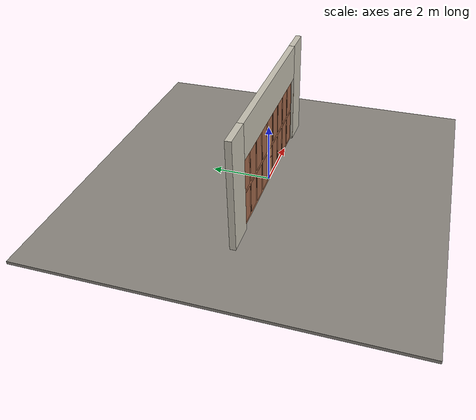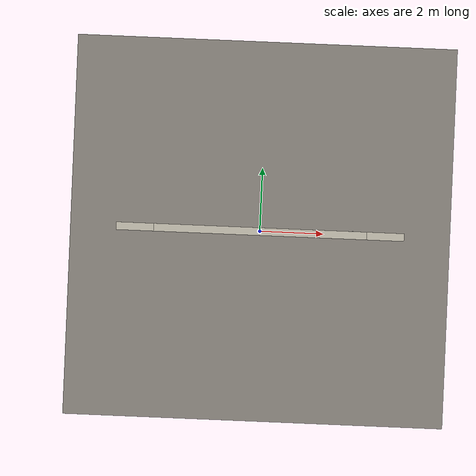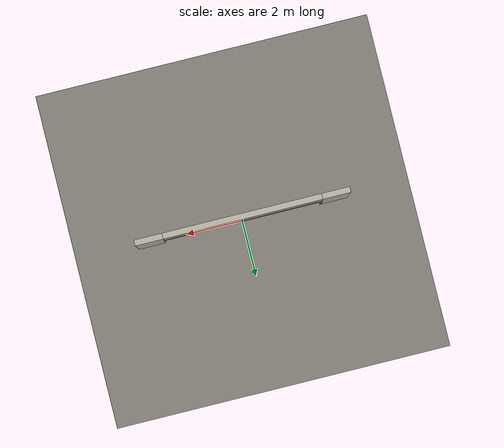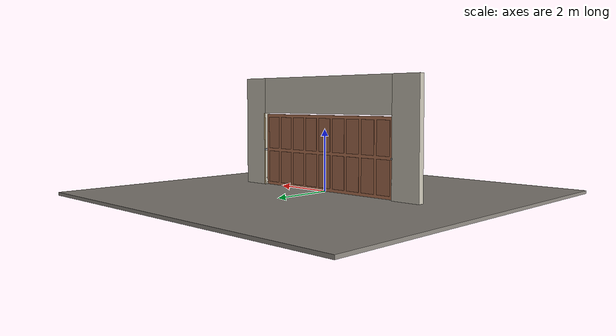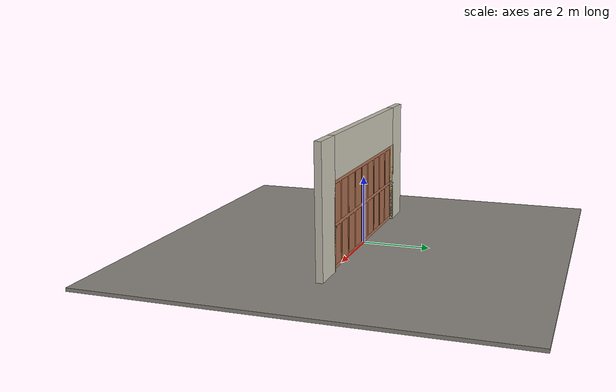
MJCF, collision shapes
<?xml version="1.0" ?>
<mujoco model="db0173_garage_tiltup_full">
  <compiler angle="radian" meshdir="../../hardware" texturedir="../../textures" autolimits="true" inertiafromgeom="false"/>
  <option timestep="0.002" integrator="implicitfast" cone="elliptic" impratio="10" noslip_iterations="3">
    <flag multiccd="enable"/>
  </option>
  <size memory="16M"/>
  <default>
    <geom condim="4" solref="0.005 1" solimp="0.95 0.99 0.001"/>
    <joint solreflimit="0.005 1" solimplimit="0.95 0.99 0.001"/>
    <tendon solreflimit="0.005 1"/>
    <equality solref="0.002 1"/>
  </default>
  <visual>
    <headlight ambient="0.4 0.4 0.4" diffuse="0.7 0.7 0.7" specular="0.2 0.2 0.2"/>
    <quality shadowsize="4096"/>
    <map znear="0.01" zfar="60"/>
  </visual>
  <asset>
    <mesh name="lever_01c630149d" file="lever_01c630149d.obj"/>
    <material name="mat_floor" rgba="0.55 0.53 0.5 1" specular="0.2" shininess="0.15" reflectance="0"/>
    <material name="mat_wall" rgba="0.78 0.76 0.7 1" specular="0.2" shininess="0.1" reflectance="0"/>
    <material name="mat_frame" rgba="0.82 0.7 0.5 1" specular="0.2" shininess="0.45" reflectance="0"/>
    <material name="mat_door" rgba="0.7 0.45 0.32 1" specular="0.2" shininess="0.4" reflectance="0"/>
    <material name="mat_door_panel" rgba="0.644 0.414 0.294 1" specular="0.2" shininess="0.4" reflectance="0"/>
    <material name="mat_track" rgba="0.65 0.66 0.68 1" specular="0.74" shininess="0.5" reflectance="0.36"/>
    <material name="mat_op_black_matte_metal" rgba="0.05 0.05 0.05 1" specular="0.38" shininess="0.3" reflectance="0.12"/>
    <material name="mat_trim" rgba="0.85 0.66 0.3 1" specular="0.8" shininess="0.75" reflectance="0.4"/>
    <texture name="skybox" type="skybox" builtin="gradient" rgb1="0.6 0.7 0.85" rgb2="0.9 0.92 0.95" width="256" height="256"/>
  </asset>
  <worldbody>
    <light name="sun" pos="1.5 -2.5 4" dir="-0.3 0.5 -0.8" directional="true" diffuse="0.8 0.8 0.8" specular="0.3 0.3 0.3" castshadow="true"/>
    <light name="fill" pos="-1.5 2.5 3" dir="0.3 -0.5 -0.7" directional="true" diffuse="0.35 0.35 0.4" castshadow="false"/>
    <camera name="robot_view" pos="0 -5.81875 2.87425" xyaxes="1 0 0 0 0.26963 0.962964" fovy="52"/>
    <camera name="far_view" pos="0 5.81875 2.87425" xyaxes="-1 0 0 0 -0.26963 0.962964" fovy="52"/>
    <camera name="iso" pos="4.42225 -4.88775 3.80525" xyaxes="0.741536 0.670913 0 -0.242917 0.268487 0.932151" fovy="46"/>
    <camera name="detail_handle" pos="0.2115 -1.1625 1.25" xyaxes="0.975133 0.221621 0 -0.065674 0.288965 0.955084" fovy="38"/>
    <geom name="floor" type="box" size="6 6 0.05" pos="0 0 -0.05" material="mat_floor" group="0" contype="1" conaffinity="1" friction="0.8 0.005 0.0001" density="2400"/>
    <geom name="wall_left" type="box" size="0.4875 0.1 1.845" pos="-3.2575 0 1.845" material="mat_wall" group="0" contype="1" conaffinity="1" friction="0.6 0.005 0.0001" density="800"/>
    <geom name="wall_right" type="box" size="0.4875 0.1 1.845" pos="3.2575 0 1.845" material="mat_wall" group="0" contype="1" conaffinity="1" friction="0.6 0.005 0.0001" density="800"/>
    <geom name="wall_header" type="box" size="2.77 0.1 0.6" pos="0 0 3.09" material="mat_wall" group="0" contype="1" conaffinity="1" friction="0.6 0.005 0.0001" density="800"/>
    <geom name="jamb_l" type="box" size="0.03 0.1 1.245" pos="-2.8 0 1.245" material="mat_frame" group="0" contype="1" conaffinity="1" friction="0.6 0.005 0.0001" density="400"/>
    <geom name="pivot_bracket_l" type="box" size="0.02 0.06 0.03" pos="-2.765 0.06 1.22" material="mat_track" group="1" contype="0" conaffinity="0" density="7850"/>
    <geom name="jamb_r" type="box" size="0.03 0.1 1.245" pos="2.8 0 1.245" material="mat_frame" group="0" contype="1" conaffinity="1" friction="0.6 0.005 0.0001" density="400"/>
    <geom name="pivot_bracket_r" type="box" size="0.02 0.06 0.03" pos="2.765 0.06 1.22" material="mat_track" group="1" contype="0" conaffinity="0" density="7850"/>
    <site name="approach_point" pos="0 -2 0" quat="1 0 0 0" size="0.05" rgba="0.2 0.9 0.2 0.5" group="4"/>
    <site name="goal_point" pos="0 2 0" quat="1 0 0 0" size="0.05" rgba="0.2 0.9 0.2 0.5" group="4"/>
    <site name="door_plane_center" pos="0 0 1.245" quat="1 0 0 0" size="0.02" rgba="0.2 0.9 0.2 0.5" group="4"/>
    <body name="door" pos="0 0 1.22">
      <inertial pos="0 0 0.01" mass="212.559182" quat="0 0 0.707107 0.707107" diaginertia="105.486828889 533.903919158 639.31889682"/>
      <joint name="door_hinge" type="hinge" axis="-1 0 0" limited="true" range="0 1.53589" damping="29.28807" frictionloss="6.252588" armature="0.5"/>
      <geom name="door_slab" type="box" size="2.745 0.0225 1.22" pos="0 0 0.01" material="mat_door" group="0" contype="1" conaffinity="1" friction="0.35 0.005 0.0001" density="1"/>
      <geom name="door_panel_0_n" type="box" size="0.249444 0.003 0.535" pos="-2.395556 -0.0255 -0.575" material="mat_door_panel" group="1" contype="0" conaffinity="0" density="1"/>
      <geom name="door_panel_0_p" type="box" size="0.249444 0.003 0.535" pos="-2.395556 0.0255 -0.575" material="mat_door_panel" group="1" contype="0" conaffinity="0" density="1"/>
      <geom name="door_panel_1_n" type="box" size="0.249444 0.003 0.535" pos="-1.796667 -0.0255 -0.575" material="mat_door_panel" group="1" contype="0" conaffinity="0" density="1"/>
      <geom name="door_panel_1_p" type="box" size="0.249444 0.003 0.535" pos="-1.796667 0.0255 -0.575" material="mat_door_panel" group="1" contype="0" conaffinity="0" density="1"/>
      <geom name="door_panel_2_n" type="box" size="0.249444 0.003 0.535" pos="-1.197778 -0.0255 -0.575" material="mat_door_panel" group="1" contype="0" conaffinity="0" density="1"/>
      <geom name="door_panel_2_p" type="box" size="0.249444 0.003 0.535" pos="-1.197778 0.0255 -0.575" material="mat_door_panel" group="1" contype="0" conaffinity="0" density="1"/>
      <geom name="door_panel_3_n" type="box" size="0.249444 0.003 0.535" pos="-0.598889 -0.0255 -0.575" material="mat_door_panel" group="1" contype="0" conaffinity="0" density="1"/>
      <geom name="door_panel_3_p" type="box" size="0.249444 0.003 0.535" pos="-0.598889 0.0255 -0.575" material="mat_door_panel" group="1" contype="0" conaffinity="0" density="1"/>
      <geom name="door_panel_4_n" type="box" size="0.249444 0.003 0.535" pos="0 -0.0255 -0.575" material="mat_door_panel" group="1" contype="0" conaffinity="0" density="1"/>
      <geom name="door_panel_4_p" type="box" size="0.249444 0.003 0.535" pos="0 0.0255 -0.575" material="mat_door_panel" group="1" contype="0" conaffinity="0" density="1"/>
      <geom name="door_panel_5_n" type="box" size="0.249444 0.003 0.535" pos="0.598889 -0.0255 -0.575" material="mat_door_panel" group="1" contype="0" conaffinity="0" density="1"/>
      <geom name="door_panel_5_p" type="box" size="0.249444 0.003 0.535" pos="0.598889 0.0255 -0.575" material="mat_door_panel" group="1" contype="0" conaffinity="0" density="1"/>
      <geom name="door_panel_6_n" type="box" size="0.249444 0.003 0.535" pos="1.197778 -0.0255 -0.575" material="mat_door_panel" group="1" contype="0" conaffinity="0" density="1"/>
      <geom name="door_panel_6_p" type="box" size="0.249444 0.003 0.535" pos="1.197778 0.0255 -0.575" material="mat_door_panel" group="1" contype="0" conaffinity="0" density="1"/>
      <geom name="door_panel_7_n" type="box" size="0.249444 0.003 0.535" pos="1.796667 -0.0255 -0.575" material="mat_door_panel" group="1" contype="0" conaffinity="0" density="1"/>
      <geom name="door_panel_7_p" type="box" size="0.249444 0.003 0.535" pos="1.796667 0.0255 -0.575" material="mat_door_panel" group="1" contype="0" conaffinity="0" density="1"/>
      <geom name="door_panel_8_n" type="box" size="0.249444 0.003 0.535" pos="2.395556 -0.0255 -0.575" material="mat_door_panel" group="1" contype="0" conaffinity="0" density="1"/>
      <geom name="door_panel_8_p" type="box" size="0.249444 0.003 0.535" pos="2.395556 0.0255 -0.575" material="mat_door_panel" group="1" contype="0" conaffinity="0" density="1"/>
      <geom name="door_panel_9_n" type="box" size="0.249444 0.003 0.535" pos="-2.395556 -0.0255 0.595" material="mat_door_panel" group="1" contype="0" conaffinity="0" density="1"/>
      <geom name="door_panel_9_p" type="box" size="0.249444 0.003 0.535" pos="-2.395556 0.0255 0.595" material="mat_door_panel" group="1" contype="0" conaffinity="0" density="1"/>
      <geom name="door_panel_10_n" type="box" size="0.249444 0.003 0.535" pos="-1.796667 -0.0255 0.595" material="mat_door_panel" group="1" contype="0" conaffinity="0" density="1"/>
      <geom name="door_panel_10_p" type="box" size="0.249444 0.003 0.535" pos="-1.796667 0.0255 0.595" material="mat_door_panel" group="1" contype="0" conaffinity="0" density="1"/>
      <geom name="door_panel_11_n" type="box" size="0.249444 0.003 0.535" pos="-1.197778 -0.0255 0.595" material="mat_door_panel" group="1" contype="0" conaffinity="0" density="1"/>
      <geom name="door_panel_11_p" type="box" size="0.249444 0.003 0.535" pos="-1.197778 0.0255 0.595" material="mat_door_panel" group="1" contype="0" conaffinity="0" density="1"/>
      <geom name="door_panel_12_n" type="box" size="0.249444 0.003 0.535" pos="-0.598889 -0.0255 0.595" material="mat_door_panel" group="1" contype="0" conaffinity="0" density="1"/>
      <geom name="door_panel_12_p" type="box" size="0.249444 0.003 0.535" pos="-0.598889 0.0255 0.595" material="mat_door_panel" group="1" contype="0" conaffinity="0" density="1"/>
      <geom name="door_panel_13_n" type="box" size="0.249444 0.003 0.535" pos="0 -0.0255 0.595" material="mat_door_panel" group="1" contype="0" conaffinity="0" density="1"/>
      <geom name="door_panel_13_p" type="box" size="0.249444 0.003 0.535" pos="0 0.0255 0.595" material="mat_door_panel" group="1" contype="0" conaffinity="0" density="1"/>
      <geom name="door_panel_14_n" type="box" size="0.249444 0.003 0.535" pos="0.598889 -0.0255 0.595" material="mat_door_panel" group="1" contype="0" conaffinity="0" density="1"/>
      <geom name="door_panel_14_p" type="box" size="0.249444 0.003 0.535" pos="0.598889 0.0255 0.595" material="mat_door_panel" group="1" contype="0" conaffinity="0" density="1"/>
      <geom name="door_panel_15_n" type="box" size="0.249444 0.003 0.535" pos="1.197778 -0.0255 0.595" material="mat_door_panel" group="1" contype="0" conaffinity="0" density="1"/>
      <geom name="door_panel_15_p" type="box" size="0.249444 0.003 0.535" pos="1.197778 0.0255 0.595" material="mat_door_panel" group="1" contype="0" conaffinity="0" density="1"/>
      <geom name="door_panel_16_n" type="box" size="0.249444 0.003 0.535" pos="1.796667 -0.0255 0.595" material="mat_door_panel" group="1" contype="0" conaffinity="0" density="1"/>
      <geom name="door_panel_16_p" type="box" size="0.249444 0.003 0.535" pos="1.796667 0.0255 0.595" material="mat_door_panel" group="1" contype="0" conaffinity="0" density="1"/>
      <geom name="door_panel_17_n" type="box" size="0.249444 0.003 0.535" pos="2.395556 -0.0255 0.595" material="mat_door_panel" group="1" contype="0" conaffinity="0" density="1"/>
      <geom name="door_panel_17_p" type="box" size="0.249444 0.003 0.535" pos="2.395556 0.0255 0.595" material="mat_door_panel" group="1" contype="0" conaffinity="0" density="1"/>
      <body name="t_handle" pos="0 0 -0.32">
        <inertial pos="0 -0.043758 0" mass="0.321518" quat="0.707107 0 0 -0.707107" diaginertia="0.000208692 0.000223196 0.000404264"/>
        <joint name="t_handle_hinge" type="hinge" axis="0 -1 0" limited="true" range="0 1.5708" damping="0.127804" frictionloss="0.028" stiffness="0.4" springref="-0.75" armature="0.01"/>
        <geom name="t_handle_spindle" type="cylinder" size="0.006 0.0305" pos="0 0 0" quat="0.707107 -0.707107 0 0" material="mat_op_black_matte_metal" group="1" contype="0" conaffinity="0" density="7850"/>
        <geom name="t_handle_t_n" type="mesh" mesh="lever_01c630149d" pos="0 -0.0225 0" quat="0.707107 0.707107 0 0" material="mat_op_black_matte_metal" group="1" contype="0" conaffinity="0" density="3000"/>
        <geom name="t_handle_t_col_n" type="box" size="0.055 0.008 0.008" pos="0 -0.0625 0" material="mat_op_black_matte_metal" group="3" contype="1" conaffinity="1" rgba="0.8 0.3 0.3 0.25" friction="0.6 0.005 0.0001" density="3000"/>
        <geom name="t_handle_cylinder_n" type="cylinder" size="0.0085 0.004" pos="0 -0.0725 0" quat="0.707107 -0.707107 0 0" material="mat_trim" group="1" contype="0" conaffinity="0" density="7100"/>
        <site name="t_handle_grip_n" pos="-0.0385 -0.0625 0" quat="1 0 0 0" size="0.012" rgba="0.2 0.9 0.2 0.5" group="4"/>
      </body>
    </body>
  </worldbody>
  <sensor>
    <jointpos name="door_hinge_pos" joint="door_hinge"/>
    <jointvel name="door_hinge_vel" joint="door_hinge"/>
    <jointpos name="t_handle_hinge_pos" joint="t_handle_hinge"/>
    <jointvel name="t_handle_hinge_vel" joint="t_handle_hinge"/>
  </sensor>
</mujoco>
